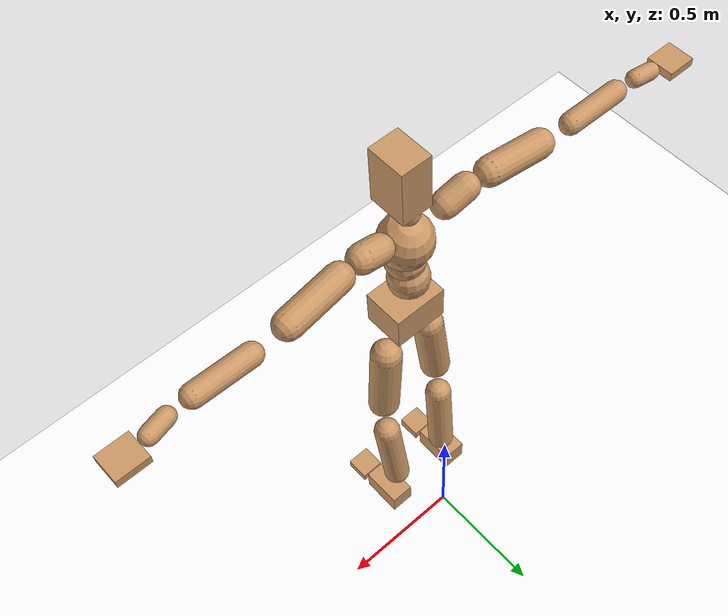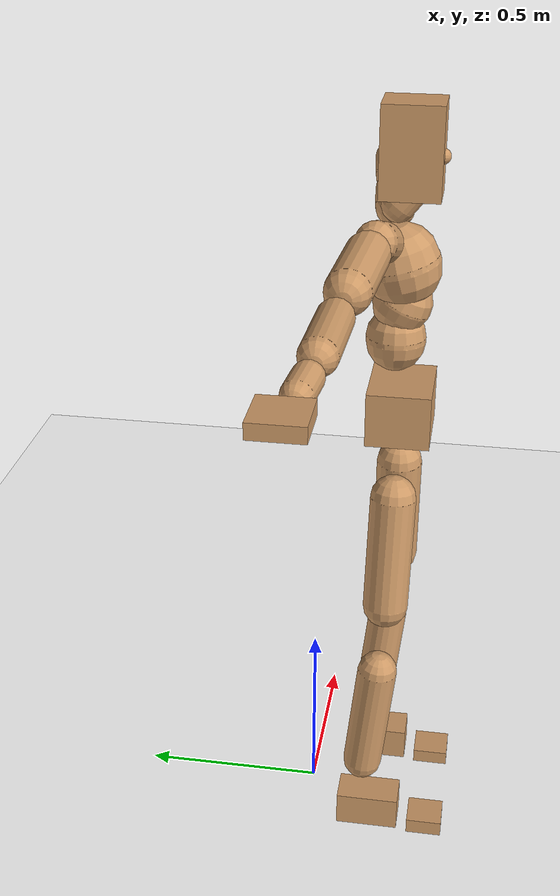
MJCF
<mujoco model="humanoid">
  <option integrator="implicitfast" />

  <visual>
    <global offwidth="1280" offheight="960" />
    <headlight active="1" ambient="0.34 0.34 0.34" diffuse="0.5 0.5 0.5" />
  </visual>

  <default>
    <joint damping="2" stiffness="2" armature="0.01" limited="true" solimplimit="0 .99 .01" />
    <geom condim="1" friction="0.7 0.005 0.0001" solimp=".99 .99 .003" solref="0.015 1" margin="0.001" rgba="0.8 0.6 .4 1" />
    <default class="smplcontact">
      <geom condim="3" friction="1. 0.005 0.0001" solref="0.015 1" solimp="0.98 0.98 0.001" priority="1" />
    </default>
    <default class="stiff_medium">
      <joint stiffness="10" />
    </default>
    <default class="stiff_medium_higher">
      <joint stiffness="50" />
    </default>
    <default class="stiff_high">
      <joint stiffness="100" />
    </default>
  </default>

  <asset>
    <texture type="skybox" builtin="gradient" rgb1="0.99 0.99 0.99" rgb2="0.608 0.828 0.892" width="100" />
    <texture builtin="flat" height="1278" mark="cross" markrgb="1 1 1" name="texgeom" random="0.01" rgb1="0.8 0.6 0.4" rgb2="0.8 0.6 0.4" type="cube" width="127" />
    <texture name="texplane" type="2d" builtin="checker" markrgb="1 1 1" rgb1="0.756 0.772 0.76" rgb2="0.6 0.6 0.6" width="100" height="100" />
    <material name="MatPlane" reflectance="0.5" texture="texplane" texrepeat="1 1" texuniform="true" />
    <material name="geom" texture="texgeom" texuniform="true" />
  </asset>

  <worldbody>
    <light name="tracking_light" pos="0 0 7" dir="0 0 -1" directional="true" cutoff="100" exponent="1" diffuse="1 1 1" specular="0.1 0.1 0.1" mode="trackcom" />
    <camera name="back" pos="0 3 2.4" xyaxes="-1 0 0 0 -1 2" mode="trackcom" />
    <camera name="side" pos="-3 0 2.4" xyaxes="0 -1 0 1 0 2" mode="trackcom" />
    <camera name="front_side" pos="-2.8 -2.8 0.8" xyaxes="0.5 -0.5 0 0.1 0.1 1" mode="trackcom" />
    <geom condim="3" name="floor" pos="0 0 0" rgba="1 1 1 1" size="100 100 .2" type="plane" material="MatPlane" />
    <body name="Pelvis" pos="-0.0018 -0.2233 1.27986" euler="90 0 0">
      <site name="Pelvis" size="0.01" />
      <freejoint name="Pelvis" />
      <geom type="box" pos="-0.0000 -0.0121 -0.0055" size="0.1069 0.0722 0.083" quat="1.0000 0.0000 0.0000 0.0000" density="3165.830099" name="Pelvis" />
      <body name="L_Hip" pos="0.0955625 -0.125675 -0.00935">
        <joint name="L_Hip_x" type="hinge" pos="0 0 0" axis="1 0 0" stiffness="17.19824030612245" range="-160.0 22.92" class="stiff_medium" damping="29.629361290924336" armature="0.022687051049198843"/>
        <joint name="L_Hip_y" type="hinge" pos="0 0 0" axis="0 1 0" stiffness="17.095561632653062" range="-70.0 70.0" class="stiff_medium" damping="16.75923613591632" armature="0.016429527259457163"/>
        <joint name="L_Hip_z" type="hinge" pos="0 0 0" axis="0 0 1" stiffness="17.10435142857143" range="-28.65 90.0" class="stiff_medium" damping="19.702841471961815" armature="0.022696093663089653"/>
        <geom type="capsule" density="2040.816327" fromto="0.0094875 -0.103125 -0.0012375 0.037675 -0.412775 -0.00495" size="0.0615" name="L_Hip" />
        <body name="L_Knee" pos="0.0471625 -0.5159 -0.0061875">
          <joint name="L_Knee_x" type="hinge" pos="0 0 0" axis="1 0 0" range="-5.16 171.89" damping="15.062760794576993" armature="0.021343797365827876" stiffness="3.321907163265306"/>
          <joint name="L_Knee_y" type="hinge" pos="0 0 0" axis="0 1 0" range="-4.58 6.88" damping="12.945965232871574" armature="0.015441578364462104" stiffness="3.3917763265306125"/>
          <joint name="L_Knee_z" type="hinge" pos="0 0 0" axis="0 0 1" range="-6.88 4.58" damping="15.00691806006554" armature="0.021384230246159527" stiffness="3.2910874489795923"/>
          <geom type="capsule" density="1234.567901" fromto="-0.0037125 -0.10945 -0.0119625 -0.0149875 -0.4378 -0.048125" size="0.0541" name="L_Knee" />
          <body name="L_Ankle" pos="-0.0187 -0.54725 -0.0600875">
            <joint name="L_Ankle_x" type="hinge" pos="0 0 0" axis="1 0 0" range="-45.84 45.84" class="stiff_medium" damping="8.859849432432613" armature="0.01585794451740476" stiffness="13.750018673469388"/>
            <joint name="L_Ankle_y" type="hinge" pos="0 0 0" axis="0 1 0" range="-74.48 22.92" class="stiff_medium" damping="4.399379468505369" armature="0.015640018623433526" stiffness="13.750011836734695"/>
            <joint name="L_Ankle_z" type="hinge" pos="0 0 0" axis="0 0 1" range="-4.58 4.58" class="stiff_medium" damping="8.387836414114327" armature="0.014213292870695416" stiffness="13.75"/>
            <geom type="box" pos="0.0320375 -0.0328625 0.033275" size="0.0483 0.0464 0.085" quat="1.0000 0.0000 0.0000 0.0000" density="449.071558" name="L_Ankle" class="smplcontact" />
            <body name="L_Toe" pos="0.0363 -0.076725 0.164038">
              <joint name="L_Toe_x" type="hinge" pos="0 0 0" axis="1 0 0" range="-91.67 22.92" armature="0.013386048586152452" damping="2.713360779989246" stiffness="2.75"/>
              <joint name="L_Toe_y" type="hinge" pos="0 0 0" axis="0 1 0" range="-4.58 4.58" armature="0.012385744586589299" damping="2.610011402776646" stiffness="2.75"/>
              <joint name="L_Toe_z" type="hinge" pos="0 0 0" axis="0 0 1" range="-4.58 4.58" armature="0.010363183740583995" damping="2.3874151413864317" stiffness="2.75"/>
              <geom type="box" pos="-0.004125 0.0075625 0.0341" size="0.0478 0.02 0.0496" quat="1.0000 0.0000 0.0000 0.0000" density="423.206892" name="L_Toe" class="smplcontact" />
            </body>
          </body>
        </body>
      </body>
      <body name="R_Hip" pos="-0.0930875 -0.124437 -0.0059125">
        <joint name="R_Hip_x" type="hinge" pos="0 0 0" axis="1 0 0" stiffness="17.19824030612245" range="-160.0 22.92" class="stiff_medium" damping="29.629361290924336" armature="0.022687051049198843"/>
        <joint name="R_Hip_y" type="hinge" pos="0 0 0" axis="0 1 0" stiffness="17.095561632653062" range="-70.0 70.0" class="stiff_medium" damping="16.75923613591632" armature="0.016429527259457163"/>
        <joint name="R_Hip_z" type="hinge" pos="0 0 0" axis="0 0 1" stiffness="17.10435142857143" range="-90.0 28.65" class="stiff_medium" damping="19.702841471961815" armature="0.022696093663089653"/>
        <geom type="capsule" density="2040.816327" fromto="-0.0105875 -0.105188 -0.002475 -0.042075 -0.420887 -0.0097625" size="0.0606" name="R_Hip" />
        <body name="R_Knee" pos="-0.0526625 -0.526075 -0.0122375">
          <joint name="R_Knee_x" type="hinge" pos="0 0 0" axis="1 0 0" range="-5.16 171.89" damping="15.062760794576993" armature="0.021343797365827876" stiffness="3.321907163265306"/>
          <joint name="R_Knee_y" type="hinge" pos="0 0 0" axis="0 1 0" range="-6.88 4.58" damping="12.945965232871574" armature="0.015441578364462104" stiffness="3.3917763265306125"/>
          <joint name="R_Knee_z" type="hinge" pos="0 0 0" axis="0 0 1" range="-4.58 6.88" damping="15.00691806006554" armature="0.021384230246159527" stiffness="3.2910874489795923"/>
          <geom type="capsule" density="1234.567901" fromto="0.0044 -0.109587 -0.0116875 0.017325 -0.438213 -0.046475" size="0.0541" name="R_Knee" />
          <body name="R_Ankle" pos="0.021725 -0.5478 -0.0581625">
            <joint name="R_Ankle_x" type="hinge" pos="0 0 0" axis="1 0 0" range="-45.84 45.84" class="stiff_medium" damping="8.859849432432613" armature="0.01585794451740476" stiffness="13.750018673469388"/>
            <joint name="R_Ankle_y" type="hinge" pos="0 0 0" axis="0 1 0" range="-22.92 74.48" class="stiff_medium" damping="4.399379468505369" armature="0.015640018623433526" stiffness="13.750011836734695"/>
            <joint name="R_Ankle_z" type="hinge" pos="0 0 0" axis="0 0 1" range="-4.58 4.58" class="stiff_medium" damping="8.387836414114327" armature="0.014213292870695416" stiffness="13.75"/>
            <geom type="box" pos="-0.02915 -0.023925 0.0352" size="0.0483 0.0478 0.0865" quat="1.0000 0.0000 0.0000 0.0000" density="434.700981" name="R_Ankle" class="smplcontact" />
            <body name="R_Toe" pos="-0.034925 -0.0661375 0.169538">
              <joint name="R_Toe_x" type="hinge" pos="0 0 0" axis="1 0 0" range="-91.67 22.92" armature="0.013386048586152452" damping="2.713360779989246" stiffness="2.75"/>
              <joint name="R_Toe_y" type="hinge" pos="0 0 0" axis="0 1 0" range="-4.58 4.58" armature="0.012385744586589299" damping="2.610011402776646" stiffness="2.75"/>
              <joint name="R_Toe_z" type="hinge" pos="0 0 0" axis="0 0 1" range="-4.58 4.58" armature="0.010363183740583995" damping="2.3874151413864317" stiffness="2.75"/>
              <geom type="box" pos="0.005775 0.0061875 0.0312125" size="0.0479 0.0216 0.0493" quat="1.0000 0.0000 0.0000 0.0000" density="407.384095" name="R_Toe" class="smplcontact" />
            </body>
          </body>
        </body>
      </body>
      <body name="Torso" pos="-0.0025 0.109 -0.0267">
        <joint name="Torso_x" type="hinge" pos="0 0 0" axis="1 0 0" range="-25.78 57.3" class="stiff_medium" damping="17.81661784253542" armature="0.012204442824088032" stiffness="11.55979291666667"/>
        <joint name="Torso_y" type="hinge" pos="0 0 0" axis="0 1 0" range="-57.3 57.3" class="stiff_high" damping="32.66648617457636" armature="0.023482633249027433" stiffness="113.6051595744681"/>
        <joint name="Torso_z" type="hinge" pos="0 0 0" axis="0 0 1" range="-34.38 34.38" class="stiff_high" damping="26.532055594632826" armature="0.016035100718302126" stiffness="109.75141136363638"/>
        <geom type="capsule" density="2040.816327" fromto="0.0025 0.0608 0.0005 0.003 0.0743 0.0006" size="0.0769" name="Torso" />
        <body name="Spine" pos="0.0055 0.1352 0.0011">
          <joint name="Spine_x" type="hinge" pos="0 0 0" axis="1 0 0" stiffness="11.652306458333332" range="-25.78 57.3" class="stiff_medium" damping="18.3468499559195" armature="0.012838923235543196"/>
          <joint name="Spine_y" type="hinge" pos="0 0 0" axis="0 1 0" stiffness="12.490174523809525" range="-57.3 57.3" class="stiff_high" damping="13.727844217436887" armature="0.023575244397477886"/>
          <joint name="Spine_z" type="hinge" pos="0 0 0" axis="0 0 1" stiffness="24.140002666666668" range="-34.38 34.38" class="stiff_high" damping="18.06061740533582" armature="0.018767022520783615"/>
          <geom type="capsule" density="2040.816327" fromto="0.0007 0.0238 0.0114 0.0008 0.0291 0.014" size="0.0755" name="Spine" />
          <body name="Chest" pos="0.0015 0.0529 0.0254">
            <joint name="Chest_x" type="hinge" pos="0 0 0" axis="1 0 0" stiffness="12.52777088888889" range="-25.78 57.3" class="stiff_medium" damping="19.3234206846418" armature="0.013246821899117765"/>
            <joint name="Chest_y" type="hinge" pos="0 0 0" axis="0 1 0" stiffness="14.856075609756099" range="-57.3 57.3" class="stiff_high" damping="14.973397185345426" armature="0.02358069574104024"/>
            <joint name="Chest_z" type="hinge" pos="0 0 0" axis="0 0 1" stiffness="24.504841860465113" range="-34.38 34.38" class="stiff_high" damping="18.77641315249792" armature="0.01998208789833815"/>
            <geom type="capsule" density="2040.816327" fromto="-0.0009 0.0682 -0.0173 -0.001 0.0833 -0.0212" size="0.1002" name="Chest" />
            <body name="Neck" pos="-0.0028 0.2139 -0.0429">
              <joint name="Neck_x" type="hinge" pos="0 0 0" axis="1 0 0" range="-28.65 57.3" class="stiff_medium_higher" damping="9.999999999999993" armature="0.009999999999999988" stiffness="50.0"/>
              <joint name="Neck_y" type="hinge" pos="0 0 0" axis="0 1 0" range="-40.11 40.11" class="stiff_medium_higher" damping="10.0" armature="0.010000000000000002" stiffness="50.0"/>
              <joint name="Neck_z" type="hinge" pos="0 0 0" axis="0 0 1" range="-40.11 40.11" class="stiff_medium_higher" damping="9.999999999999982" armature="0.009999999999999966" stiffness="50.0"/>
              <geom type="capsule" density="1000" fromto="0.001 0.013 0.0103 0.0041 0.052 0.0411" size="0.0436" name="Neck" />
              <body name="Head" pos="0.0052 0.065 0.0513">
                <joint name="Head_x" type="hinge" pos="0 0 0" axis="1 0 0" range="-28.65 57.3" class="stiff_medium_higher" damping="1.9999999999999936" armature="0.009999999999999938" stiffness="50.0"/>
                <joint name="Head_y" type="hinge" pos="0 0 0" axis="0 1 0" range="-40.11 40.11" class="stiff_medium_higher" damping="2.0" armature="0.01" stiffness="50.0"/>
                <joint name="Head_z" type="hinge" pos="0 0 0" axis="0 0 1" range="-40.11 40.11" class="stiff_medium_higher" damping="1.9999999999999922" armature="0.009999999999999924" stiffness="50.0"/>
                <geom type="box" pos="-0.0042 0.0876 -0.0116" size="0.0606 0.1154 0.076" quat="1.0000 0.0000 0.0000 0.0000" density="1018.069894" name="Head" />
                <geom type="capsule" name="nose" size="0.02 0.01" pos="0 0.07 0.05" quat="1 0 0 0" mass="0" contype="0" conaffinity="0" />
              </body>
            </body>
            <body name="L_Thorax" pos="0.11032 0.17038 -0.04774">
              <joint name="L_Thorax_x" type="hinge" pos="0 0 0" axis="1 0 0" range="-10.89 4.58" class="stiff_medium_higher" damping="36.24085805878971" armature="0.018856138634744113" stiffness="87.06712295918368"/>
              <joint name="L_Thorax_y" type="hinge" pos="0 0 0" axis="0 1 0" range="-28.65 17.19" class="stiff_medium_higher" damping="40.96620891880995" armature="0.02389813212990586" stiffness="87.78041020408163"/>
              <joint name="L_Thorax_z" type="hinge" pos="0 0 0" axis="0 0 1" range="-31.51 40.11" class="stiff_medium_higher" damping="40.96835729355361" armature="0.023902786052476355" stiffness="87.77252448979593"/>
              <geom type="capsule" density="1000" fromto="0.02548 0.00854 -0.00252 0.10192 0.03416 -0.00994" size="0.0521" name="L_Thorax" />
              <body name="L_Shoulder" pos="0.1274 0.0427 -0.01246">
                <joint name="L_Shoulder_x" type="hinge" pos="0 0 0" axis="1 0 0" range="-97.4 97.4" class="stiff_medium" damping="10.216467793124663" armature="0.01675097572082097" stiffness="17.30848"/>
                <joint name="L_Shoulder_y" type="hinge" pos="0 0 0" axis="0 1 0" range="-108.86 80.21" class="stiff_medium" damping="12.210584630805666" armature="0.023662310849895674" stiffness="17.503030918367347"/>
                <joint name="L_Shoulder_z" type="hinge" pos="0 0 0" axis="0 0 1" range="-97.4 85.94" class="stiff_medium" damping="12.207996623471661" armature="0.023667800947755637" stiffness="17.491553877551024"/>
                <geom type="capsule" density="1000" fromto="0.07266 -0.00364 -0.0077 0.29078 -0.01428 -0.0308" size="0.0517" name="L_Shoulder" />
                <body name="L_Elbow" pos="0.36344 -0.01792 -0.0385">
                  <joint name="L_Elbow_x" type="hinge" pos="0 0 0" axis="1 0 0" range="-17.19 4.58" damping="7.586581525572687" armature="0.013620348817446707" stiffness="3.380601775510204"/>
                  <joint name="L_Elbow_y" type="hinge" pos="0 0 0" axis="0 1 0" range="-180.0 17.19" damping="9.758671052618118" armature="0.022523674987219203" stiffness="3.382455510204082"/>
                  <joint name="L_Elbow_z" type="hinge" pos="0 0 0" axis="0 0 1" range="-100.84 4.58" damping="9.76033597904074" armature="0.022552387617329545" stiffness="3.3793019183673465"/>
                  <geom type="capsule" density="1000" fromto="0.06972 0.00252 -0.00028 0.27916 0.01008 -0.00126" size="0.0405" name="L_Elbow" />
                  <body name="L_Wrist" pos="0.34888 0.0126 -0.00168">
                    <joint name="L_Wrist_x" type="hinge" pos="0 0 0" axis="1 0 0" range="-180.0 22.92" armature="0.013168550139584057" damping="2.8121939405269756" stiffness="3.002773530612245"/>
                    <joint name="L_Wrist_y" type="hinge" pos="0 0 0" axis="0 1 0" range="-17.19 17.19" armature="0.01914592614381597" damping="3.4076565933193645" stiffness="3.0325311428571426"/>
                    <joint name="L_Wrist_z" type="hinge" pos="0 0 0" axis="0 0 1" range="-22.92 22.92" armature="0.019468640829170564" damping="3.4294485001746886" stiffness="3.0205285306122445"/>
                    <geom type="capsule" density="1000" fromto="0.02352 -0.00224 -0.0042 0.09408 -0.0091 -0.0168" size="0.0318" name="L_Wrist" class="smplcontact" />
                    <body name="L_Hand" pos="0.1176 -0.01148 -0.02086">
                      <joint name="L_Hand_x" type="hinge" pos="0 0 0" axis="1 0 0" range="-17.19 17.19" armature="0.010418235140997885" damping="2.4154112856734806" stiffness="2.8000000000000003"/>
                      <joint name="L_Hand_y" type="hinge" pos="0 0 0" axis="0 1 0" range="-51.57 51.57" armature="0.015057977012994345" damping="2.903871058996393" stiffness="2.8000000000000003"/>
                      <joint name="L_Hand_z" type="hinge" pos="0 0 0" axis="0 0 1" range="-91.67 91.67" armature="0.0162947636021454" damping="3.0207726854567234" stiffness="2.8000000000000003"/>
                      <geom type="box" pos="0.06902 0.0014 -0.00812" size="0.0585 0.0158 0.0538" quat="1.0000 0.0000 0.0000 0.0000" density="400.552564" name="L_Hand" class="smplcontact" />
                    </body>
                  </body>
                </body>
              </body>
            </body>
            <body name="R_Thorax" pos="-0.11452 0.16632 -0.05404">
              <joint name="R_Thorax_x" type="hinge" pos="0 0 0" axis="1 0 0" range="-10.89 4.58" class="stiff_medium_higher" damping="36.24085805878971" armature="0.018856138634744113" stiffness="87.06712295918368"/>
              <joint name="R_Thorax_y" type="hinge" pos="0 0 0" axis="0 1 0" range="-17.19 28.65" class="stiff_medium_higher" damping="40.96620891880995" armature="0.02389813212990586" stiffness="87.78041020408163"/>
              <joint name="R_Thorax_z" type="hinge" pos="0 0 0" axis="0 0 1" range="-40.11 31.51" class="stiff_medium_higher" damping="40.96835729355361" armature="0.023902786052476355" stiffness="87.77252448979593"/>
              <geom type="capsule" density="1000" fromto="-0.02688 0.0091 -0.00252 -0.10752 0.0364 -0.01022" size="0.0511" name="R_Thorax" />
              <body name="R_Shoulder" pos="-0.1344 0.04564 -0.01274">
                <joint name="R_Shoulder_x" type="hinge" pos="0 0 0" axis="1 0 0" range="-97.4 97.4" class="stiff_medium" damping="10.216467793124663" armature="0.01675097572082097" stiffness="17.30848"/>
                <joint name="R_Shoulder_y" type="hinge" pos="0 0 0" axis="0 1 0" range="-80.21 108.86" class="stiff_medium" damping="12.210584630805666" armature="0.023662310849895674" stiffness="17.503030918367347"/>
                <joint name="R_Shoulder_z" type="hinge" pos="0 0 0" axis="0 0 1" range="-85.94 97.4" class="stiff_medium" damping="12.207996623471661" armature="0.023667800947755637" stiffness="17.491553877551024"/>
                <geom type="capsule" density="1000" fromto="-0.07098 -0.00378 -0.00602 -0.2842 -0.01498 -0.02394" size="0.0531" name="R_Shoulder" />
                <body name="R_Elbow" pos="-0.35518 -0.01862 -0.02996">
                  <joint name="R_Elbow_x" type="hinge" pos="0 0 0" axis="1 0 0" range="-17.19 4.58" damping="7.586581525572687" armature="0.013620348817446707" stiffness="3.380601775510204"/>
                  <joint name="R_Elbow_y" type="hinge" pos="0 0 0" axis="0 1 0" range="-17.19 180.0" damping="9.758671052618118" armature="0.022523674987219203" stiffness="3.382455510204082"/>
                  <joint name="R_Elbow_z" type="hinge" pos="0 0 0" axis="0 0 1" range="-4.58 100.84" damping="9.76033597904074" armature="0.022552387617329545" stiffness="3.3793019183673465"/>
                  <geom type="capsule" density="1000" fromto="-0.07154 0.00224 -0.00154 -0.28588 0.00868 -0.00616" size="0.0408" name="R_Elbow" />
                  <body name="R_Wrist" pos="-0.35742 0.01092 -0.00784">
                    <joint name="R_Wrist_x" type="hinge" pos="0 0 0" axis="1 0 0" range="-180.0 22.92" armature="0.013168550139584057" damping="2.8121939405269756" stiffness="3.002773530612245"/>
                    <joint name="R_Wrist_y" type="hinge" pos="0 0 0" axis="0 1 0" range="-17.19 17.19" armature="0.01914592614381597" damping="3.4076565933193645" stiffness="3.0325311428571426"/>
                    <joint name="R_Wrist_z" type="hinge" pos="0 0 0" axis="0 0 1" range="-22.92 22.92" armature="0.019468640829170564" damping="3.4294485001746886" stiffness="3.0205285306122445"/>
                    <geom type="capsule" density="1000" fromto="-0.02366 -0.00168 -0.00294 -0.09478 -0.00686 -0.01162" size="0.0326" name="R_Wrist" class="smplcontact" />
                    <body name="R_Hand" pos="-0.11844 -0.00854 -0.01442">
                      <joint name="R_Hand_x" type="hinge" pos="0 0 0" axis="1 0 0" range="-17.19 17.19" armature="0.010418235140997885" damping="2.4154112856734806" stiffness="2.8000000000000003"/>
                      <joint name="R_Hand_y" type="hinge" pos="0 0 0" axis="0 1 0" range="-51.57 51.57" armature="0.015057977012994345" damping="2.903871058996393" stiffness="2.8000000000000003"/>
                      <joint name="R_Hand_z" type="hinge" pos="0 0 0" axis="0 0 1" range="-91.67 91.67" armature="0.0162947636021454" damping="3.0207726854567234" stiffness="2.8000000000000003"/>
                      <geom type="box" pos="-0.06468 -0.00126 -0.01106" size="0.0569 0.0164 0.0546" quat="1.0000 0.0000 0.0000 0.0000" density="403.679611" name="R_Hand" class="smplcontact" />
                    </body>
                  </body>
                </body>
              </body>
            </body>
          </body>
        </body>
      </body>
    </body>
  </worldbody>
  <actuator>
    <general name="L_Hip_x" joint="L_Hip_x" biastype="affine" gainprm="494.15714895193184" biasprm="-370.3206974542467 -309.5683255102041 -3.950581505456578" ctrllimited="true" ctrlrange="-1 1" forcerange="-619.1366510204082 619.1366510204082" />
    <general name="L_Hip_y" joint="L_Hip_y" biastype="affine" gainprm="375.9510358389407" biasprm="0.0 -307.72010938775514 -3.3518472271832644" ctrllimited="true" ctrlrange="-1 1" forcerange="-615.4402187755103 615.4402187755103" />
    <general name="L_Hip_z" joint="L_Hip_z" biastype="affine" gainprm="318.78232268102033" biasprm="164.83182045074247 -307.8783257142857 -3.9405682943923632" ctrllimited="true" ctrlrange="-1 1" forcerange="-615.7566514285714 615.7566514285714" />
    <general name="L_Knee_x" joint="L_Knee_x" biastype="affine" gainprm="461.92695293520586" biasprm="435.00186875395013 -298.9716446938775 -3.7656901986442484" ctrllimited="true" ctrlrange="-1 1" forcerange="-597.943289387755 597.943289387755" />
    <general name="L_Knee_y" joint="L_Knee_y" biastype="affine" gainprm="30.528235525488515" biasprm="6.1269582642778 -305.25986938775515 -3.2364913082178934" ctrllimited="true" ctrlrange="-1 1" forcerange="-610.5197387755103 610.5197387755103" />
    <general name="L_Knee_z" joint="L_Knee_z" biastype="affine" gainprm="29.621968875582738" biasprm="-5.945072287420619 -296.1978704081633 -3.751729515016385" ctrllimited="true" ctrlrange="-1 1" forcerange="-592.3957408163266 592.3957408163266" />
    <general name="L_Ankle_x" joint="L_Ankle_x" biastype="affine" gainprm="99.00742693676564" biasprm="0.0 -123.7501680612245 -2.9532831441442045" ctrllimited="true" ctrlrange="-1 1" forcerange="-247.500336122449 247.500336122449" />
    <general name="L_Ankle_y" joint="L_Ankle_y" biastype="affine" gainprm="105.18453958139726" biasprm="-55.680850727072304 -123.75010653061226 -2.932919645670246" ctrllimited="true" ctrlrange="-1 1" forcerange="-247.5002130612245 247.5002130612245" />
    <general name="L_Ankle_z" joint="L_Ankle_z" biastype="affine" gainprm="9.89208986799086" biasprm="0.0 -123.75 -2.7959454713714424" ctrllimited="true" ctrlrange="-1 1" forcerange="-247.5 247.5" />
    <general name="L_Toe_x" joint="L_Toe_x" biastype="affine" gainprm="98.99865309808496" biasprm="-59.39573610693202 -99.0 -1.0853443119956985" ctrllimited="true" ctrlrange="-1 1" forcerange="-198.0 198.0" />
    <general name="L_Toe_y" joint="L_Toe_y" biastype="affine" gainprm="7.913671894392689" biasprm="0.0 -99.0 -1.0440045611106583" ctrllimited="true" ctrlrange="-1 1" forcerange="-198.0 198.0" />
    <general name="L_Toe_z" joint="L_Toe_z" biastype="affine" gainprm="7.913671894392689" biasprm="0.0 -99.0 -0.9549660565545728" ctrllimited="true" ctrlrange="-1 1" forcerange="-198.0 198.0" />
    <general name="R_Hip_x" joint="R_Hip_x" biastype="affine" gainprm="494.15714895193184" biasprm="-370.3206974542467 -309.5683255102041 -3.950581505456578" ctrllimited="true" ctrlrange="-1 1" forcerange="-619.1366510204082 619.1366510204082" />
    <general name="R_Hip_y" joint="R_Hip_y" biastype="affine" gainprm="375.9510358389407" biasprm="0.0 -307.72010938775514 -3.3518472271832644" ctrllimited="true" ctrlrange="-1 1" forcerange="-615.4402187755103 615.4402187755103" />
    <general name="R_Hip_z" joint="R_Hip_z" biastype="affine" gainprm="318.78232268102033" biasprm="-164.83182045074247 -307.8783257142857 -3.9405682943923632" ctrllimited="true" ctrlrange="-1 1" forcerange="-615.7566514285714 615.7566514285714" />
    <general name="R_Knee_x" joint="R_Knee_x" biastype="affine" gainprm="461.92695293520586" biasprm="435.00186875395013 -298.9716446938775 -3.7656901986442484" ctrllimited="true" ctrlrange="-1 1" forcerange="-597.943289387755 597.943289387755" />
    <general name="R_Knee_y" joint="R_Knee_y" biastype="affine" gainprm="30.528235525488515" biasprm="-6.1269582642778 -305.25986938775515 -3.2364913082178934" ctrllimited="true" ctrlrange="-1 1" forcerange="-610.5197387755103 610.5197387755103" />
    <general name="R_Knee_z" joint="R_Knee_z" biastype="affine" gainprm="29.621968875582738" biasprm="5.945072287420619 -296.1978704081633 -3.751729515016385" ctrllimited="true" ctrlrange="-1 1" forcerange="-592.3957408163266 592.3957408163266" />
    <general name="R_Ankle_x" joint="R_Ankle_x" biastype="affine" gainprm="99.00742693676564" biasprm="0.0 -123.7501680612245 -2.9532831441442045" ctrllimited="true" ctrlrange="-1 1" forcerange="-247.500336122449 247.500336122449" />
    <general name="R_Ankle_y" joint="R_Ankle_y" biastype="affine" gainprm="105.18453958139726" biasprm="55.680850727072304 -123.75010653061226 -2.932919645670246" ctrllimited="true" ctrlrange="-1 1" forcerange="-247.5002130612245 247.5002130612245" />
    <general name="R_Ankle_z" joint="R_Ankle_z" biastype="affine" gainprm="9.89208986799086" biasprm="0.0 -123.75 -2.7959454713714424" ctrllimited="true" ctrlrange="-1 1" forcerange="-247.5 247.5" />
    <general name="R_Toe_x" joint="R_Toe_x" biastype="affine" gainprm="98.99865309808496" biasprm="-59.39573610693202 -99.0 -1.0853443119956985" ctrllimited="true" ctrlrange="-1 1" forcerange="-198.0 198.0" />
    <general name="R_Toe_y" joint="R_Toe_y" biastype="affine" gainprm="7.913671894392689" biasprm="0.0 -99.0 -1.0440045611106583" ctrllimited="true" ctrlrange="-1 1" forcerange="-198.0 198.0" />
    <general name="R_Toe_z" joint="R_Toe_z" biastype="affine" gainprm="7.913671894392689" biasprm="0.0 -99.0 -0.9549660565545728" ctrllimited="true" ctrlrange="-1 1" forcerange="-198.0 198.0" />
    <general name="Torso_x" joint="Torso_x" biastype="affine" gainprm="201.14310764492842" biasprm="76.31235860577928 -277.43503000000004 -4.7510980913427785" ctrllimited="true" ctrlrange="-1 1" forcerange="-416.1525450000001 416.1525450000001" />
    <general name="Torso_y" joint="Torso_y" biastype="affine" gainprm="272.67246693299046" biasprm="0.0 -272.65238297872344 -6.533297234915272" ctrllimited="true" ctrlrange="-1 1" forcerange="-408.9785744680852 408.9785744680852" />
    <general name="Torso_z" joint="Torso_z" biastype="affine" gainprm="158.05367395985348" biasprm="0.0 -263.4033872727273 -5.306411118926565" ctrllimited="true" ctrlrange="-1 1" forcerange="-395.10508090909093 395.10508090909093" />
    <general name="Spine_x" joint="Spine_x" biastype="affine" gainprm="202.75286496534218" biasprm="76.9230898375973 -279.655355 -4.892493321578533" ctrllimited="true" ctrlrange="-1 1" forcerange="-419.4830325 419.4830325" />
    <general name="Spine_y" joint="Spine_y" biastype="affine" gainprm="299.7862696190556" biasprm="0.0 -299.7641885714286 -6.863922108718444" ctrllimited="true" ctrlrange="-1 1" forcerange="-449.6462828571429 449.6462828571429" />
    <general name="Spine_z" joint="Spine_z" biastype="affine" gainprm="173.82082214076556" biasprm="0.0 -289.680032 -6.020205801778606" ctrllimited="true" ctrlrange="-1 1" forcerange="-434.520048 434.520048" />
    <general name="Chest_x" joint="Chest_x" biastype="affine" gainprm="217.98615136277013" biasprm="82.70249748380492 -300.6665013333334 -5.152912182571146" ctrllimited="true" ctrlrange="-1 1" forcerange="-450.999752 450.999752" />
    <general name="Chest_y" joint="Chest_y" biastype="affine" gainprm="356.57207829543177" biasprm="0.0 -356.5458146341464 -7.486698592672713" ctrllimited="true" ctrlrange="-1 1" forcerange="-534.8187219512196 534.8187219512196" />
    <general name="Chest_z" joint="Chest_z" biastype="affine" gainprm="176.44785783296902" biasprm="0.0 -294.0581023255814 -6.258804384165973" ctrllimited="true" ctrlrange="-1 1" forcerange="-441.08715348837205 441.08715348837205" />
    <general name="Neck_x" joint="Neck_x" biastype="affine" gainprm="27.00198885760427" biasprm="9.000662952534757 -36.0 -0.7999999999999995" ctrllimited="true" ctrlrange="-1 1" forcerange="-72.0 72.0" />
    <general name="Neck_y" joint="Neck_y" biastype="affine" gainprm="25.20185626709732" biasprm="0.0 -36.0 -0.8" ctrllimited="true" ctrlrange="-1 1" forcerange="-72.0 72.0" />
    <general name="Neck_z" joint="Neck_z" biastype="affine" gainprm="25.20185626709732" biasprm="0.0 -36.0 -0.7999999999999986" ctrllimited="true" ctrlrange="-1 1" forcerange="-72.0 72.0" />
    <general name="Head_x" joint="Head_x" biastype="affine" gainprm="18.001325905069514" biasprm="6.000441968356505 -24.0 -0.7999999999999975" ctrllimited="true" ctrlrange="-1 1" forcerange="-48.0 48.0" />
    <general name="Head_y" joint="Head_y" biastype="affine" gainprm="16.801237511398213" biasprm="0.0 -24.0 -0.8" ctrllimited="true" ctrlrange="-1 1" forcerange="-48.0 48.0" />
    <general name="Head_z" joint="Head_z" biastype="affine" gainprm="16.801237511398213" biasprm="0.0 -24.0 -0.7999999999999969" ctrllimited="true" ctrlrange="-1 1" forcerange="-48.0 48.0" />
    <general name="L_Thorax_x" joint="L_Thorax_x" biastype="affine" gainprm="28.21000227853141" biasprm="-11.506471517616887 -208.96109510204082 -2.8992686447031772" ctrllimited="true" ctrlrange="-1 1" forcerange="-417.92219020408163 417.92219020408163" />
    <general name="L_Thorax_y" joint="L_Thorax_y" biastype="affine" gainprm="84.27540118209936" biasprm="-21.06885029552484 -210.6729844897959 -3.277296713504796" ctrllimited="true" ctrlrange="-1 1" forcerange="-421.3459689795918 421.3459689795918" />
    <general name="L_Thorax_z" joint="L_Thorax_z" biastype="affine" gainprm="131.65929338702185" biasprm="15.809409705785923 -210.6540587755102 -3.2774685834842887" ctrllimited="true" ctrlrange="-1 1" forcerange="-421.3081175510204 421.3081175510204" />
    <general name="L_Shoulder_x" joint="L_Shoulder_x" biastype="affine" gainprm="141.23310021032776" biasprm="0.0 -83.080704 -2.7243914114999104" ctrllimited="true" ctrlrange="-1 1" forcerange="-166.161408 166.161408" />
    <general name="L_Shoulder_y" joint="L_Shoulder_y" biastype="affine" gainprm="138.61955280584408" biasprm="-21.005184259202586 -84.01454840816328 -3.256155901548178" ctrllimited="true" ctrlrange="-1 1" forcerange="-168.02909681632656 168.02909681632656" />
    <general name="L_Shoulder_z" joint="L_Shoulder_z" biastype="affine" gainprm="134.33037540273168" biasprm="-8.396564318290107 -83.9594586122449 -3.25546576625911" ctrllimited="true" ctrlrange="-1 1" forcerange="-167.9189172244898 167.9189172244898" />
    <general name="L_Elbow_x" joint="L_Elbow_x" biastype="affine" gainprm="23.120771250680953" biasprm="-13.39241733904855 -121.70166391836734 -1.2138530440916302" ctrllimited="true" ctrlrange="-1 1" forcerange="-243.4033278367347 243.4033278367347" />
    <general name="L_Elbow_y" joint="L_Elbow_y" biastype="affine" gainprm="209.53995807470082" biasprm="-173.0067476755517 -121.76839836734695 -1.5613873684188988" ctrllimited="true" ctrlrange="-1 1" forcerange="-243.5367967346939 243.5367967346939" />
    <general name="L_Elbow_z" joint="L_Elbow_z" biastype="affine" gainprm="111.91798423395207" biasprm="-102.19337091975173 -121.65486906122447 -1.5616537566465185" ctrllimited="true" ctrlrange="-1 1" forcerange="-243.30973812244895 243.30973812244895" />
    <general name="L_Wrist_x" joint="L_Wrist_x" biastype="affine" gainprm="31.904067455407095" biasprm="-24.696880129584795 -18.01664118367347 -1.1248775762107903" ctrllimited="true" ctrlrange="-1 1" forcerange="-36.03328236734694 36.03328236734694" />
    <general name="L_Wrist_y" joint="L_Wrist_y" biastype="affine" gainprm="5.458958141984436" biasprm="0.0 -18.195186857142858 -1.363062637327746" ctrllimited="true" ctrlrange="-1 1" forcerange="-36.390373714285715 36.390373714285715" />
    <general name="L_Wrist_z" joint="L_Wrist_z" biastype="affine" gainprm="7.249802464681568" biasprm="0.0 -18.123171183673467 -1.3717794000698755" ctrllimited="true" ctrlrange="-1 1" forcerange="-36.246342367346934 36.246342367346934" />
    <general name="L_Hand_x" joint="L_Hand_x" biastype="affine" gainprm="5.040371253419465" biasprm="0.0 -16.8 -0.9661645142693923" ctrllimited="true" ctrlrange="-1 1" forcerange="-33.6 33.6" />
    <general name="L_Hand_y" joint="L_Hand_y" biastype="affine" gainprm="15.121113760258392" biasprm="0.0 -16.8 -1.1615484235985574" ctrllimited="true" ctrlrange="-1 1" forcerange="-33.6 33.6" />
    <general name="L_Hand_z" joint="L_Hand_z" biastype="affine" gainprm="26.879047865093792" biasprm="0.0 -16.8 -1.2083090741826894" ctrllimited="true" ctrlrange="-1 1" forcerange="-33.6 33.6" />
    <general name="R_Thorax_x" joint="R_Thorax_x" biastype="affine" gainprm="28.21000227853141" biasprm="-11.506471517616887 -208.96109510204082 -2.8992686447031772" ctrllimited="true" ctrlrange="-1 1" forcerange="-417.92219020408163 417.92219020408163" />
    <general name="R_Thorax_y" joint="R_Thorax_y" biastype="affine" gainprm="84.27540118209936" biasprm="21.068850295524825 -210.6729844897959 -3.277296713504796" ctrllimited="true" ctrlrange="-1 1" forcerange="-421.3459689795918 421.3459689795918" />
    <general name="R_Thorax_z" joint="R_Thorax_z" biastype="affine" gainprm="131.65929338702185" biasprm="-15.809409705785923 -210.6540587755102 -3.2774685834842887" ctrllimited="true" ctrlrange="-1 1" forcerange="-421.3081175510204 421.3081175510204" />
    <general name="R_Shoulder_x" joint="R_Shoulder_x" biastype="affine" gainprm="141.23310021032776" biasprm="0.0 -83.080704 -2.7243914114999104" ctrllimited="true" ctrlrange="-1 1" forcerange="-166.161408 166.161408" />
    <general name="R_Shoulder_y" joint="R_Shoulder_y" biastype="affine" gainprm="138.61955280584408" biasprm="21.005184259202586 -84.01454840816328 -3.256155901548178" ctrllimited="true" ctrlrange="-1 1" forcerange="-168.02909681632656 168.02909681632656" />
    <general name="R_Shoulder_z" joint="R_Shoulder_z" biastype="affine" gainprm="134.33037540273168" biasprm="8.396564318290089 -83.9594586122449 -3.25546576625911" ctrllimited="true" ctrlrange="-1 1" forcerange="-167.9189172244898 167.9189172244898" />
    <general name="R_Elbow_x" joint="R_Elbow_x" biastype="affine" gainprm="23.120771250680953" biasprm="-13.39241733904855 -121.70166391836734 -1.2138530440916302" ctrllimited="true" ctrlrange="-1 1" forcerange="-243.4033278367347 243.4033278367347" />
    <general name="R_Elbow_y" joint="R_Elbow_y" biastype="affine" gainprm="209.53995807470082" biasprm="173.0067476755517 -121.76839836734695 -1.5613873684188988" ctrllimited="true" ctrlrange="-1 1" forcerange="-243.5367967346939 243.5367967346939" />
    <general name="R_Elbow_z" joint="R_Elbow_z" biastype="affine" gainprm="111.91798423395207" biasprm="102.19337091975173 -121.65486906122447 -1.5616537566465185" ctrllimited="true" ctrlrange="-1 1" forcerange="-243.30973812244895 243.30973812244895" />
    <general name="R_Wrist_x" joint="R_Wrist_x" biastype="affine" gainprm="31.904067455407095" biasprm="-24.696880129584795 -18.01664118367347 -1.1248775762107903" ctrllimited="true" ctrlrange="-1 1" forcerange="-36.03328236734694 36.03328236734694" />
    <general name="R_Wrist_y" joint="R_Wrist_y" biastype="affine" gainprm="5.458958141984436" biasprm="0.0 -18.195186857142858 -1.363062637327746" ctrllimited="true" ctrlrange="-1 1" forcerange="-36.390373714285715 36.390373714285715" />
    <general name="R_Wrist_z" joint="R_Wrist_z" biastype="affine" gainprm="7.249802464681568" biasprm="0.0 -18.123171183673467 -1.3717794000698755" ctrllimited="true" ctrlrange="-1 1" forcerange="-36.246342367346934 36.246342367346934" />
    <general name="R_Hand_x" joint="R_Hand_x" biastype="affine" gainprm="5.040371253419465" biasprm="0.0 -16.8 -0.9661645142693923" ctrllimited="true" ctrlrange="-1 1" forcerange="-33.6 33.6" />
    <general name="R_Hand_y" joint="R_Hand_y" biastype="affine" gainprm="15.121113760258392" biasprm="0.0 -16.8 -1.1615484235985574" ctrllimited="true" ctrlrange="-1 1" forcerange="-33.6 33.6" />
    <general name="R_Hand_z" joint="R_Hand_z" biastype="affine" gainprm="26.879047865093792" biasprm="0.0 -16.8 -1.2083090741826894" ctrllimited="true" ctrlrange="-1 1" forcerange="-33.6 33.6" />
  </actuator>
  <contact>
    <exclude body1="Torso" body2="Chest" />
    <exclude body1="Head" body2="Chest" />
    <exclude body1="R_Knee" body2="R_Toe" />
    <exclude body1="R_Knee" body2="L_Ankle" />
    <exclude body1="R_Knee" body2="L_Toe" />
    <exclude body1="L_Knee" body2="L_Toe" />
    <exclude body1="L_Knee" body2="R_Ankle" />
    <exclude body1="L_Knee" body2="R_Toe" />
    <exclude body1="L_Shoulder" body2="Chest" />
    <exclude body1="R_Shoulder" body2="Chest" />
  </contact>
  <sensor>
    <framelinvel name="sensor_Pelvis_framelinvel" objtype="xbody" objname="Pelvis" />
    <framelinvel name="sensor_L_Hip_framelinvel" objtype="xbody" objname="L_Hip" />
    <framelinvel name="sensor_L_Knee_framelinvel" objtype="xbody" objname="L_Knee" />
    <framelinvel name="sensor_L_Ankle_framelinvel" objtype="xbody" objname="L_Ankle" />
    <framelinvel name="sensor_L_Toe_framelinvel" objtype="xbody" objname="L_Toe" />
    <framelinvel name="sensor_R_Hip_framelinvel" objtype="xbody" objname="R_Hip" />
    <framelinvel name="sensor_R_Knee_framelinvel" objtype="xbody" objname="R_Knee" />
    <framelinvel name="sensor_R_Ankle_framelinvel" objtype="xbody" objname="R_Ankle" />
    <framelinvel name="sensor_R_Toe_framelinvel" objtype="xbody" objname="R_Toe" />
    <framelinvel name="sensor_Torso_framelinvel" objtype="xbody" objname="Torso" />
    <framelinvel name="sensor_Spine_framelinvel" objtype="xbody" objname="Spine" />
    <framelinvel name="sensor_Chest_framelinvel" objtype="xbody" objname="Chest" />
    <framelinvel name="sensor_Neck_framelinvel" objtype="xbody" objname="Neck" />
    <framelinvel name="sensor_Head_framelinvel" objtype="xbody" objname="Head" />
    <framelinvel name="sensor_L_Thorax_framelinvel" objtype="xbody" objname="L_Thorax" />
    <framelinvel name="sensor_L_Shoulder_framelinvel" objtype="xbody" objname="L_Shoulder" />
    <framelinvel name="sensor_L_Elbow_framelinvel" objtype="xbody" objname="L_Elbow" />
    <framelinvel name="sensor_L_Wrist_framelinvel" objtype="xbody" objname="L_Wrist" />
    <framelinvel name="sensor_L_Hand_framelinvel" objtype="xbody" objname="L_Hand" />
    <framelinvel name="sensor_R_Thorax_framelinvel" objtype="xbody" objname="R_Thorax" />
    <framelinvel name="sensor_R_Shoulder_framelinvel" objtype="xbody" objname="R_Shoulder" />
    <framelinvel name="sensor_R_Elbow_framelinvel" objtype="xbody" objname="R_Elbow" />
    <framelinvel name="sensor_R_Wrist_framelinvel" objtype="xbody" objname="R_Wrist" />
    <framelinvel name="sensor_R_Hand_framelinvel" objtype="xbody" objname="R_Hand" />
    <frameangvel name="sensor_Pelvis_frameangvel" objtype="xbody" objname="Pelvis" />
    <frameangvel name="sensor_L_Hip_frameangvel" objtype="xbody" objname="L_Hip" />
    <frameangvel name="sensor_L_Knee_frameangvel" objtype="xbody" objname="L_Knee" />
    <frameangvel name="sensor_L_Ankle_frameangvel" objtype="xbody" objname="L_Ankle" />
    <frameangvel name="sensor_L_Toe_frameangvel" objtype="xbody" objname="L_Toe" />
    <frameangvel name="sensor_R_Hip_frameangvel" objtype="xbody" objname="R_Hip" />
    <frameangvel name="sensor_R_Knee_frameangvel" objtype="xbody" objname="R_Knee" />
    <frameangvel name="sensor_R_Ankle_frameangvel" objtype="xbody" objname="R_Ankle" />
    <frameangvel name="sensor_R_Toe_frameangvel" objtype="xbody" objname="R_Toe" />
    <frameangvel name="sensor_Torso_frameangvel" objtype="xbody" objname="Torso" />
    <frameangvel name="sensor_Spine_frameangvel" objtype="xbody" objname="Spine" />
    <frameangvel name="sensor_Chest_frameangvel" objtype="xbody" objname="Chest" />
    <frameangvel name="sensor_Neck_frameangvel" objtype="xbody" objname="Neck" />
    <frameangvel name="sensor_Head_frameangvel" objtype="xbody" objname="Head" />
    <frameangvel name="sensor_L_Thorax_frameangvel" objtype="xbody" objname="L_Thorax" />
    <frameangvel name="sensor_L_Shoulder_frameangvel" objtype="xbody" objname="L_Shoulder" />
    <frameangvel name="sensor_L_Elbow_frameangvel" objtype="xbody" objname="L_Elbow" />
    <frameangvel name="sensor_L_Wrist_frameangvel" objtype="xbody" objname="L_Wrist" />
    <frameangvel name="sensor_L_Hand_frameangvel" objtype="xbody" objname="L_Hand" />
    <frameangvel name="sensor_R_Thorax_frameangvel" objtype="xbody" objname="R_Thorax" />
    <frameangvel name="sensor_R_Shoulder_frameangvel" objtype="xbody" objname="R_Shoulder" />
    <frameangvel name="sensor_R_Elbow_frameangvel" objtype="xbody" objname="R_Elbow" />
    <frameangvel name="sensor_R_Wrist_frameangvel" objtype="xbody" objname="R_Wrist" />
    <frameangvel name="sensor_R_Hand_frameangvel" objtype="xbody" objname="R_Hand" />
    <subtreelinvel name="Chest_subtreelinvel" body="Chest" />
    <gyro name="Pelvis_gyro" site="Pelvis" />
  </sensor>
</mujoco>
